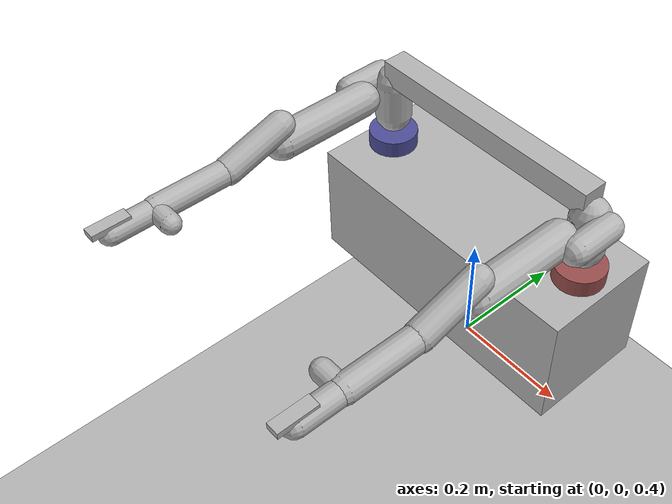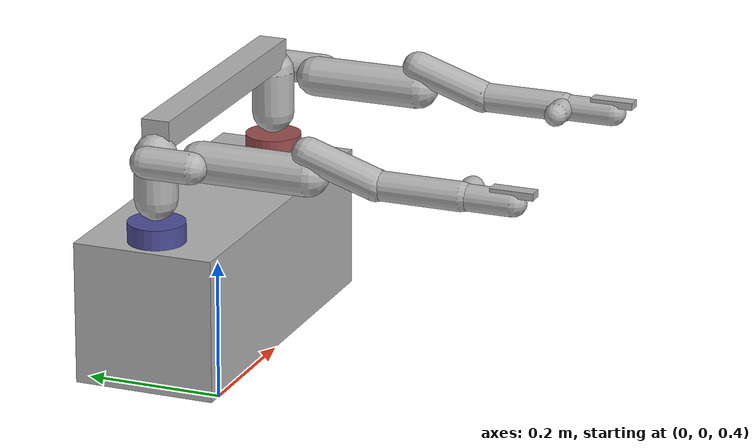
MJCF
<mujoco model="openarm14_dual">
  <compiler angle="radian" inertiafromgeom="false"/>

  <option gravity="0 0 -9.81" timestep="0.002"/>

  <default>
    <joint damping="0.5" armature="0.001"/>
    <geom contype="1" conaffinity="1" rgba="0.7 0.7 0.7 1"/>
    <motor ctrlrange="-50 50" ctrllimited="true"/>
  </default>

  <asset>
    <texture type="skybox" builtin="gradient" rgb1="0.3 0.5 0.7" rgb2="0 0 0" width="512" height="512"/>
    <texture name="grid" type="2d" builtin="checker" rgb1="0.2 0.3 0.4" rgb2="0.1 0.15 0.2" width="512" height="512"/>
    <material name="floor_mat" texture="grid" texrepeat="8 8" reflectance="0.2"/>
    <material name="link_mat" rgba="0.6 0.65 0.7 1"/>
    <material name="joint_mat" rgba="0.3 0.3 0.8 1"/>
    <material name="ee_mat" rgba="0.9 0.2 0.2 1"/>
    <material name="torso_mat" rgba="0.5 0.5 0.55 1"/>
    <material name="left_mat" rgba="0.2 0.5 0.8 1"/>
    <material name="right_mat" rgba="0.8 0.5 0.2 1"/>
    <material name="grip_mat" rgba="0.4 0.4 0.4 1"/>
    <material name="object_mat" rgba="0.1 0.7 0.3 1"/>
  </asset>

  <worldbody>
    <light diffuse="0.8 0.8 0.8" pos="0 0 3" dir="0 0 -1"/>
    <light diffuse="0.4 0.4 0.4" pos="0 2 2" dir="0 -0.5 -1"/>
    <geom type="plane" size="2 2 0.01" material="floor_mat"/>

    <!-- Torso (shared base for both arms)                            -->
    <body name="torso" pos="0 0 0.6">
      <geom type="box" size="0.25 0.1 0.1" material="torso_mat"/>
      <inertial pos="0 0 0" mass="5.0"
                fullinertia="0.02 0.06 0.06 0 0 0"/>

      <!-- LEFT ARM (mounted at -0.2, 0, 0.098 relative to torso)  -->
      <!-- pos adjusts so arm base is at world z=0.698              -->
      <body name="L_base" pos="-0.2 0 0.098">
        <geom type="cylinder" size="0.04 0.03" rgba="0.3 0.3 0.6 1"/>

        <!-- L_link0 / L_j1 (Z-axis) -->
        <body name="L_link0" pos="0 0 0.0625">
          <joint name="L_j1" type="hinge" axis="0 0 1"
                 limited="true" range="-1.309 1.309"/>
          <inertial pos="0.00115 0.0000332 0.0540"
                    mass="1.1417"
                    fullinertia="0.001567 0.001273 0.001016 -1e-06 -2.9e-05 1e-06"/>
          <geom type="capsule" fromto="0 0 0  0 0 0.06" size="0.03" material="left_mat"/>
          <geom type="sphere" pos="0 0 0" size="0.025" material="joint_mat"/>

          <!-- L_link1 / L_j2 (-X axis) -->
          <body name="L_link1" pos="-0.0301 0 0.06" euler="1.5708 0 0">
            <joint name="L_j2" type="hinge" axis="-1 0 0"
                   limited="true" range="-0.157 1.571"/>
            <inertial pos="0.00840 0.0 0.03257"
                      mass="0.2775"
                      fullinertia="0.000359 0.000376 0.000232 1e-06 -0.000109 1e-06"/>
            <geom type="capsule" fromto="0 0 0  0 0 0.065" size="0.022" material="left_mat"/>
            <geom type="sphere" pos="0 0 0" size="0.02" material="joint_mat"/>

            <!-- L_link2 / L_j3 (Z-axis) -->
            <body name="L_link2" pos="0.0301 0 0.06625">
              <joint name="L_j3" type="hinge" axis="0 0 1"
                     limited="true" range="-1.484 1.484"/>
              <inertial pos="-0.00210 0.000555 0.0905"
                        mass="1.0739"
                        fullinertia="0.004372 0.004319 0.000661 1e-06 1.1e-05 -3.6e-05"/>
              <geom type="capsule" fromto="0 0 0  0 0 0.154" size="0.028" material="left_mat"/>
              <geom type="sphere" pos="0 0 0" size="0.02" material="joint_mat"/>

              <!-- L_link3 / L_j4 (Y-axis) -->
              <body name="L_link3" pos="0 0.0315 0.15375">
                <joint name="L_j4" type="hinge" axis="0 1 0"
                       limited="true" range="0 2.356"/>
                <inertial pos="-0.00290 -0.03031 0.06340"
                          mass="0.6349"
                          fullinertia="0.000623 0.000511 0.000334 -1e-06 -1.9e-05 3.8e-05"/>
                <geom type="capsule" fromto="0 0 0  0 -0.0315 0.096" size="0.022" material="left_mat"/>
                <geom type="sphere" pos="0 0 0" size="0.018" material="joint_mat"/>

                <!-- L_link4 / L_j5 (Z-axis) -->
                <body name="L_link4" pos="0 -0.0315 0.0955">
                  <joint name="L_j5" type="hinge" axis="0 0 1"
                         limited="true" range="-1.484 1.484"/>
                  <inertial pos="-0.00305 0.000887 0.04308"
                            mass="0.6157"
                            fullinertia="0.000423 0.000445 0.000324 -8e-06 6e-06 -6e-06"/>
                  <geom type="capsule" fromto="0 0 0  0 0 0.12" size="0.02" material="left_mat"/>
                  <geom type="sphere" pos="0 0 0" size="0.016" material="joint_mat"/>

                  <!-- L_link5 / L_j6 (X-axis) -->
                  <body name="L_link5" pos="0.0375 0 0.1205">
                    <joint name="L_j6" type="hinge" axis="1 0 0"
                           limited="true" range="-0.698 0.698"/>
                    <inertial pos="-0.03714 0.000332 -0.0000950"
                              mass="0.4752"
                              fullinertia="0.000143 0.000157 0.000159 1e-06 1e-06 1e-06"/>
                    <geom type="capsule" fromto="0 0 0  -0.0375 0 0" size="0.016" material="left_mat"/>
                    <geom type="sphere" pos="0 0 0" size="0.014" material="joint_mat"/>

                    <!-- L_link6 / L_j7 (Y-axis) -->
                    <body name="L_link6" pos="-0.0375 0 0">
                      <joint name="L_j7" type="hinge" axis="0 1 0"
                             limited="true" range="-1.396 1.396"/>
                      <inertial pos="0.0000688 0.01266 0.06952"
                                mass="0.4660"
                                fullinertia="0.000639 0.000497 0.000342 1e-06 1e-06 8.9e-05"/>
                      <geom type="capsule" fromto="0 0 0  0 0 0.07" size="0.018" material="left_mat"/>
                      <geom type="sphere" pos="0 0 0" size="0.014" material="joint_mat"/>

                      <!-- Left end-effector -->
                      <site name="L_ee" pos="0 0 0.07" size="0.015" rgba="1 0.2 0.2 1"/>

                      <!-- Left gripper -->
                      <body name="L_gripper" pos="0 0 0.07">
                        <joint name="L_grip" type="slide" axis="0 1 0"
                               limited="true" range="0 0.04" damping="10" armature="0.01"/>
                        <geom type="box" size="0.01 0.005 0.03" pos="0 0.015 0" material="grip_mat"/>
                        <inertial pos="0 0.015 0" mass="0.05"
                                  fullinertia="5e-06 5e-06 5e-06 0 0 0"/>
                      </body>

                    </body>
                  </body>
                </body>
              </body>
            </body>
          </body>
        </body>
      </body>

      <!-- RIGHT ARM (mounted at +0.2, 0, 0.098 relative to torso) -->
      <!-- Mirrored: X positions negated, X-dependent axes flipped  -->
      <body name="R_base" pos="0.2 0 0.098">
        <geom type="cylinder" size="0.04 0.03" rgba="0.6 0.3 0.3 1"/>

        <!-- R_link0 / R_j1 (Z-axis, same) -->
        <body name="R_link0" pos="0 0 0.0625">
          <joint name="R_j1" type="hinge" axis="0 0 1"
                 limited="true" range="-1.309 1.309"/>
          <inertial pos="-0.00115 0.0000332 0.0540"
                    mass="1.1417"
                    fullinertia="0.001567 0.001273 0.001016 1e-06 2.9e-05 1e-06"/>
          <geom type="capsule" fromto="0 0 0  0 0 0.06" size="0.03" material="right_mat"/>
          <geom type="sphere" pos="0 0 0" size="0.025" material="joint_mat"/>

          <!-- R_link1 / R_j2 (+X axis, mirrored from -X) -->
          <body name="R_link1" pos="0.0301 0 0.06" euler="1.5708 0 0">
            <joint name="R_j2" type="hinge" axis="1 0 0"
                   limited="true" range="-0.157 1.571"/>
            <inertial pos="-0.00840 0.0 0.03257"
                      mass="0.2775"
                      fullinertia="0.000359 0.000376 0.000232 -1e-06 0.000109 1e-06"/>
            <geom type="capsule" fromto="0 0 0  0 0 0.065" size="0.022" material="right_mat"/>
            <geom type="sphere" pos="0 0 0" size="0.02" material="joint_mat"/>

            <!-- R_link2 / R_j3 (Z-axis, same) -->
            <body name="R_link2" pos="-0.0301 0 0.06625">
              <joint name="R_j3" type="hinge" axis="0 0 1"
                     limited="true" range="-1.484 1.484"/>
              <inertial pos="0.00210 0.000555 0.0905"
                        mass="1.0739"
                        fullinertia="0.004372 0.004319 0.000661 -1e-06 -1.1e-05 -3.6e-05"/>
              <geom type="capsule" fromto="0 0 0  0 0 0.154" size="0.028" material="right_mat"/>
              <geom type="sphere" pos="0 0 0" size="0.02" material="joint_mat"/>

              <!-- R_link3 / R_j4 (Y-axis, same) -->
              <body name="R_link3" pos="0 0.0315 0.15375">
                <joint name="R_j4" type="hinge" axis="0 1 0"
                       limited="true" range="0 2.356"/>
                <inertial pos="0.00290 -0.03031 0.06340"
                          mass="0.6349"
                          fullinertia="0.000623 0.000511 0.000334 1e-06 1.9e-05 3.8e-05"/>
                <geom type="capsule" fromto="0 0 0  0 -0.0315 0.096" size="0.022" material="right_mat"/>
                <geom type="sphere" pos="0 0 0" size="0.018" material="joint_mat"/>

                <!-- R_link4 / R_j5 (Z-axis, same) -->
                <body name="R_link4" pos="0 -0.0315 0.0955">
                  <joint name="R_j5" type="hinge" axis="0 0 1"
                         limited="true" range="-1.484 1.484"/>
                  <inertial pos="0.00305 0.000887 0.04308"
                            mass="0.6157"
                            fullinertia="0.000423 0.000445 0.000324 8e-06 -6e-06 -6e-06"/>
                  <geom type="capsule" fromto="0 0 0  0 0 0.12" size="0.02" material="right_mat"/>
                  <geom type="sphere" pos="0 0 0" size="0.016" material="joint_mat"/>

                  <!-- R_link5 / R_j6 (-X axis, mirrored from +X) -->
                  <body name="R_link5" pos="-0.0375 0 0.1205">
                    <joint name="R_j6" type="hinge" axis="-1 0 0"
                           limited="true" range="-0.698 0.698"/>
                    <inertial pos="0.03714 0.000332 -0.0000950"
                              mass="0.4752"
                              fullinertia="0.000143 0.000157 0.000159 -1e-06 -1e-06 1e-06"/>
                    <geom type="capsule" fromto="0 0 0  0.0375 0 0" size="0.016" material="right_mat"/>
                    <geom type="sphere" pos="0 0 0" size="0.014" material="joint_mat"/>

                    <!-- R_link6 / R_j7 (Y-axis, same) -->
                    <body name="R_link6" pos="0.0375 0 0">
                      <joint name="R_j7" type="hinge" axis="0 1 0"
                             limited="true" range="-1.396 1.396"/>
                      <inertial pos="-0.0000688 0.01266 0.06952"
                                mass="0.4660"
                                fullinertia="0.000639 0.000497 0.000342 -1e-06 -1e-06 8.9e-05"/>
                      <geom type="capsule" fromto="0 0 0  0 0 0.07" size="0.018" material="right_mat"/>
                      <geom type="sphere" pos="0 0 0" size="0.014" material="joint_mat"/>

                      <!-- Right end-effector -->
                      <site name="R_ee" pos="0 0 0.07" size="0.015" rgba="1 0.2 0.2 1"/>

                      <!-- Right gripper -->
                      <body name="R_gripper" pos="0 0 0.07">
                        <joint name="R_grip" type="slide" axis="0 1 0"
                               limited="true" range="0 0.04" damping="10" armature="0.01"/>
                        <geom type="box" size="0.01 0.005 0.03" pos="0 0.015 0" material="grip_mat"/>
                        <inertial pos="0 0.015 0" mass="0.05"
                                  fullinertia="5e-06 5e-06 5e-06 0 0 0"/>
                      </body>

                    </body>
                  </body>
                </body>
              </body>
            </body>
          </body>
        </body>
      </body>
    </body>

    <!-- Graspable object: 4040 aluminum profile (0.4m x 0.04m x 0.04m) -->
    <!-- Long axis along X, connecting left and right grasp points      -->
    <body name="object" pos="0 0 0.85">
      <joint name="object_free" type="free"/>
      <geom type="box" size="0.2 0.02 0.02" material="object_mat"
            mass="0.5" friction="1.0 0.005 0.0001"/>
      <inertial pos="0 0 0" mass="0.5"
                fullinertia="1.33e-04 6.73e-03 6.73e-03 0 0 0"/>
      <site name="object_site" pos="0 0 0" size="0.01" rgba="1 1 0 1"/>
      <!-- Grasp sites near each end of the bar -->
      <site name="grasp_site_L" pos="-0.18 0 0" size="0.015" rgba="0 1 0 0.5"/>
      <site name="grasp_site_R" pos="0.18 0 0" size="0.015" rgba="0 0 1 0.5"/>
    </body>

  </worldbody>

  <!-- Equality constraints (weld for grasping)                     -->
  <!-- Left hand grasps left end, right hand grasps right end.      -->
  <!-- relpose = pos of object center in link6 frame:               -->
  <!--   Left:  object center is +0.18 in X from L_ee (left end)    -->
  <!--   Right: object center is -0.18 in X from R_ee (right end)   -->
  <equality>
    <weld name="grasp_left"  body1="L_link6" body2="object"
          relpose="0.18 0 0.07 1 0 0 0" active="false"/>
    <weld name="grasp_right" body1="R_link6" body2="object"
          relpose="-0.18 0 0.07 1 0 0 0" active="false"/>
  </equality>

  <!-- Actuators (7+7 revolute + 1+1 prismatic = 16)                -->
  <actuator>
    <!-- Left arm -->
    <motor joint="L_j1" name="a_L_j1" gear="1"/>
    <motor joint="L_j2" name="a_L_j2" gear="1"/>
    <motor joint="L_j3" name="a_L_j3" gear="1"/>
    <motor joint="L_j4" name="a_L_j4" gear="1"/>
    <motor joint="L_j5" name="a_L_j5" gear="1"/>
    <motor joint="L_j6" name="a_L_j6" gear="1"/>
    <motor joint="L_j7" name="a_L_j7" gear="1"/>
    <motor joint="L_grip" name="a_L_grip" gear="1" ctrlrange="-10 10"/>
    <!-- Right arm -->
    <motor joint="R_j1" name="a_R_j1" gear="1"/>
    <motor joint="R_j2" name="a_R_j2" gear="1"/>
    <motor joint="R_j3" name="a_R_j3" gear="1"/>
    <motor joint="R_j4" name="a_R_j4" gear="1"/>
    <motor joint="R_j5" name="a_R_j5" gear="1"/>
    <motor joint="R_j6" name="a_R_j6" gear="1"/>
    <motor joint="R_j7" name="a_R_j7" gear="1"/>
    <motor joint="R_grip" name="a_R_grip" gear="1" ctrlrange="-10 10"/>
  </actuator>

  <!-- Sensors                                                       -->
  <sensor>
    <!-- Left arm joint positions -->
    <jointpos joint="L_j1" name="L_j1_pos"/>
    <jointpos joint="L_j2" name="L_j2_pos"/>
    <jointpos joint="L_j3" name="L_j3_pos"/>
    <jointpos joint="L_j4" name="L_j4_pos"/>
    <jointpos joint="L_j5" name="L_j5_pos"/>
    <jointpos joint="L_j6" name="L_j6_pos"/>
    <jointpos joint="L_j7" name="L_j7_pos"/>
    <jointpos joint="L_grip" name="L_grip_pos"/>
    <!-- Right arm joint positions -->
    <jointpos joint="R_j1" name="R_j1_pos"/>
    <jointpos joint="R_j2" name="R_j2_pos"/>
    <jointpos joint="R_j3" name="R_j3_pos"/>
    <jointpos joint="R_j4" name="R_j4_pos"/>
    <jointpos joint="R_j5" name="R_j5_pos"/>
    <jointpos joint="R_j6" name="R_j6_pos"/>
    <jointpos joint="R_j7" name="R_j7_pos"/>
    <jointpos joint="R_grip" name="R_grip_pos"/>
    <!-- Left arm joint velocities -->
    <jointvel joint="L_j1" name="L_j1_vel"/>
    <jointvel joint="L_j2" name="L_j2_vel"/>
    <jointvel joint="L_j3" name="L_j3_vel"/>
    <jointvel joint="L_j4" name="L_j4_vel"/>
    <jointvel joint="L_j5" name="L_j5_vel"/>
    <jointvel joint="L_j6" name="L_j6_vel"/>
    <jointvel joint="L_j7" name="L_j7_vel"/>
    <jointvel joint="L_grip" name="L_grip_vel"/>
    <!-- Right arm joint velocities -->
    <jointvel joint="R_j1" name="R_j1_vel"/>
    <jointvel joint="R_j2" name="R_j2_vel"/>
    <jointvel joint="R_j3" name="R_j3_vel"/>
    <jointvel joint="R_j4" name="R_j4_vel"/>
    <jointvel joint="R_j5" name="R_j5_vel"/>
    <jointvel joint="R_j6" name="R_j6_vel"/>
    <jointvel joint="R_j7" name="R_j7_vel"/>
    <jointvel joint="R_grip" name="R_grip_vel"/>
    <!-- End-effector positions -->
    <framepos objtype="site" objname="L_ee" name="L_ee_pos"/>
    <framepos objtype="site" objname="R_ee" name="R_ee_pos"/>
    <!-- Object position -->
    <framepos objtype="body" objname="object" name="object_pos"/>
  </sensor>
</mujoco>
